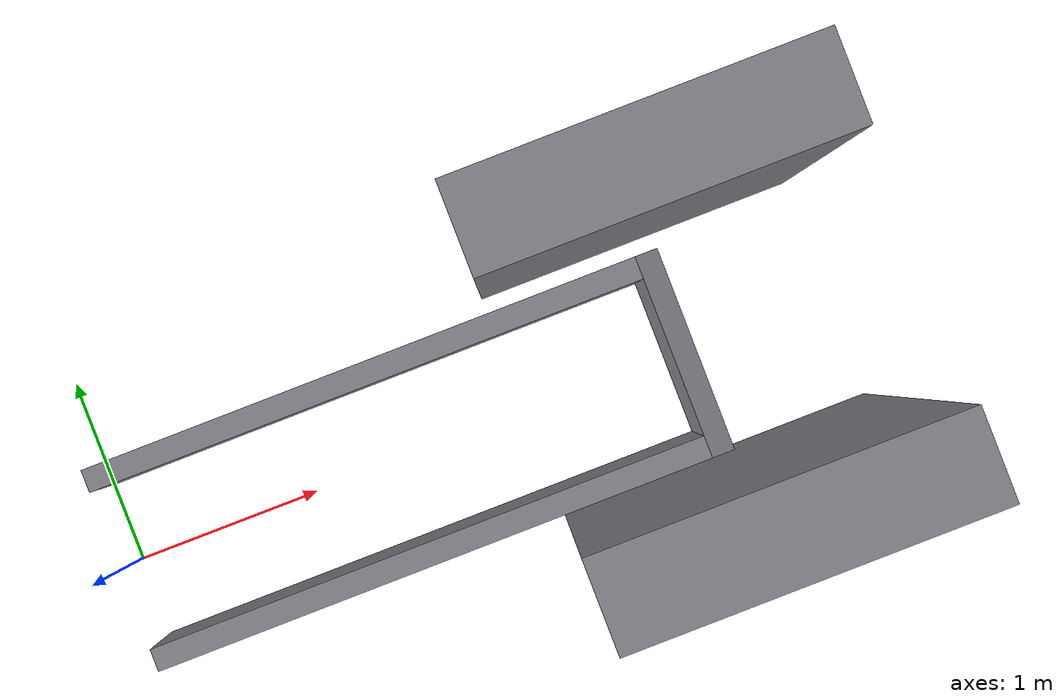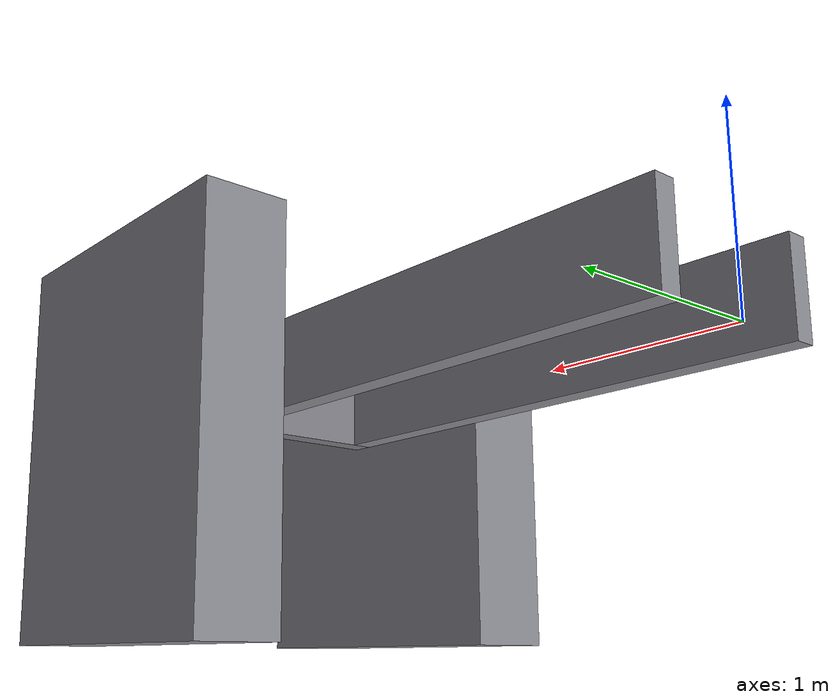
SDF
<?xml version="1.0"?>
<sdf version="1.9">
  <model name="usv_dock_narrow">
    <static>true</static>

    <!-- 通道内宽 0.85 m，墙厚 0.12 m，通道长 3.0 m，墙高 0.5 m -->
    <link name="left_wall">
      <pose>1.5 0.485 0.25 0 0 0</pose>
      <collision name="collision">
        <geometry>
          <box>
            <size>3.0 0.12 0.5</size>
          </box>
        </geometry>
      </collision>
      <visual name="visual">
        <geometry>
          <box>
            <size>3.0 0.12 0.5</size>
          </box>
        </geometry>
        <material>
          <ambient>0.45 0.45 0.48 1</ambient>
          <diffuse>0.55 0.55 0.58 1</diffuse>
        </material>
      </visual>
    </link>

    <link name="right_wall">
      <pose>1.5 -0.485 0.25 0 0 0</pose>
      <collision name="collision">
        <geometry>
          <box>
            <size>3.0 0.12 0.5</size>
          </box>
        </geometry>
      </collision>
      <visual name="visual">
        <geometry>
          <box>
            <size>3.0 0.12 0.5</size>
          </box>
        </geometry>
        <material>
          <ambient>0.45 0.45 0.48 1</ambient>
          <diffuse>0.55 0.55 0.58 1</diffuse>
        </material>
      </visual>
    </link>

    <link name="back_wall">
      <pose>3.06 0 0.25 0 0 0</pose>
      <collision name="collision">
        <geometry>
          <box>
            <size>0.12 1.09 0.5</size>
          </box>
        </geometry>
      </collision>
      <visual name="visual">
        <geometry>
          <box>
            <size>0.12 1.09 0.5</size>
          </box>
        </geometry>
        <material>
          <ambient>0.40 0.40 0.43 1</ambient>
          <diffuse>0.50 0.50 0.53 1</diffuse>
        </material>
      </visual>
    </link>

    <!-- 通道内入泊判定 -->
    <plugin
      filename="gz-sim-performer-detector-system"
      name="gz::sim::systems::PerformerDetector">
      <topic>/vrx/usv_dock_narrow/bay_internal/contain</topic>
      <pose>1.5 0 0.25 0 0 0</pose>
      <geometry>
        <box>
          <size>1.2 0.75 0.6</size>
        </box>
      </geometry>
    </plugin>

    <!-- 入口外预泊/接近区 -->
    <plugin
      filename="gz-sim-performer-detector-system"
      name="gz::sim::systems::PerformerDetector">
      <topic>/vrx/usv_dock_narrow/bay_external/contain</topic>
      <pose>-1.0 0 0.25 0 0 0</pose>
      <geometry>
        <box>
          <size>1.5 0.90 0.6</size>
        </box>
      </geometry>
    </plugin>

    <!-- 岸上图案板（左/右，无 PlacardPlugin；AprilTag/二维码位置可自行调整） -->
    <include>
      <name>placard_left</name>
      <pose>3.2 0.95 0.25 0 0 3.141592653589793</pose>
      <uri>model://placard_2022</uri>
    </include>
    <include>
      <name>placard_right</name>
      <pose>3.2 -0.95 0.25 0 0 3.141592653589793</pose>
      <uri>model://placard_2022</uri>
    </include>
  </model>
</sdf>

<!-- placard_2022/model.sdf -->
<sdf version="1.6">
  <model name="placard">
    <pose>0 0 1 0 0 0</pose>
    <!-- 仅保留立柱；展示板由 dock_2022 上 tag_visual 二维码平面担任 -->
    <link name="link">
      <collision name="collision_base">
        <pose>0 0 -0.336 0 0 0</pose>
        <geometry>
          <box>
            <size>2.0 0.5 2.328</size>
          </box>
        </geometry>
      </collision>

      <visual name="post_visual">
        <pose>0 0 -0.336 0 0 0</pose>
        <geometry>
          <box>
            <size>2.0 0.5 2.328</size>
          </box>
        </geometry>
        <material>
          <ambient>0.45 0.45 0.48 1</ambient>
          <diffuse>0.55 0.55 0.58 1</diffuse>
        </material>
      </visual>
    </link>
  </model>
</sdf>
